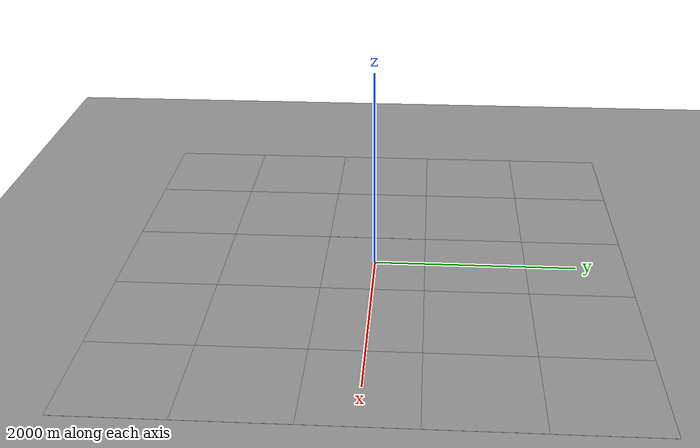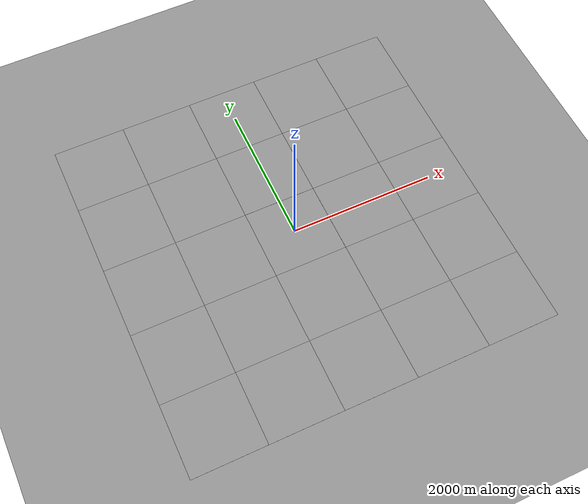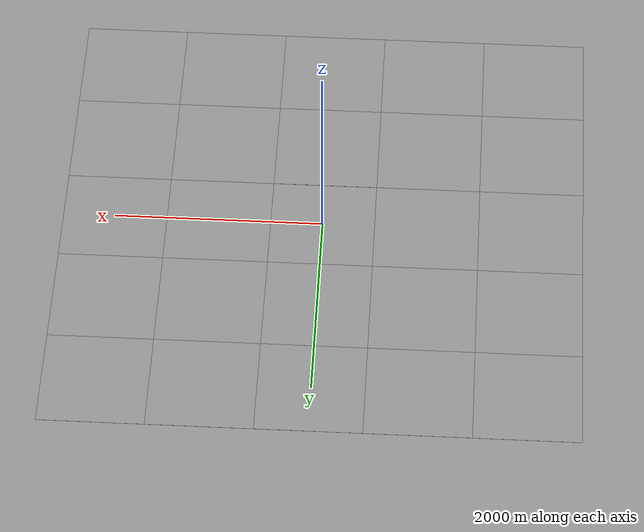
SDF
<sdf version="1.6">
 <world name="default">
  <scene>
   <grid>1</grid>
   <origin_visual>1</origin_visual>
   <ambient>0.592 0.624 0.635 1</ambient>
   <background>0.35 0.35 0.35 1</background>
   <shadows>1</shadows>
   <sky><clouds><speed>12</speed></clouds></sky>
  </scene>
  <physics name="default_physics" default="0" type="ode">
   <max_step_size>0.01</max_step_size>
   <real_time_factor>1</real_time_factor>
   <real_time_update_rate>100</real_time_update_rate>
  </physics>
  <spherical_coordinates>
   <surface_model>EARTH_WGS84</surface_model>
   <latitude_deg>0</latitude_deg>
   <longitude_deg>0</longitude_deg>
   <elevation>0</elevation>
   <heading_deg>0</heading_deg>
  </spherical_coordinates>
  <light name="sun" type="directional">
   <pose>0 0 1000 0 -0 0</pose>
   <diffuse>0.8 0.8 0.8 1</diffuse>
   <specular>0.5 0.5 0.5 1</specular>
   <attenuation>
    <range>1000</range>
    <constant>0.9</constant>
    <linear>0.01</linear>
    <quadratic>0.001</quadratic>
   </attenuation>
   <direction>-0.5 0.1 -0.4</direction>
  </light>
  <model name="ground_plane_0">
   <pose>0 0 -0.04 0 -0 0</pose>
   <static>1</static>
   <link name="link">
    <visual name="visual">
     <cast_shadows>0</cast_shadows>
     <geometry><plane><normal>0 0 1</normal><size>1000 1000</size></plane></geometry>
     <material>
      <script><uri>file://media/materials/scripts/gazebo.material</uri><name>Gazebo/Grey</name></script>
     </material>
    </visual>
    <collision name="collision">
     <geometry><plane><normal>0 0 1</normal><size>1000 1000</size></plane></geometry>
     <surface><friction><ode><mu>10000</mu><mu2>5000</mu2></ode></friction></surface>
    </collision>
   </link>
  </model>
  <model name="ground_plane_1">
   <pose>1000 -1000 -0.04 0 -0 0</pose>
   <static>1</static>
   <link name="link">
    <visual name="visual">
     <cast_shadows>0</cast_shadows>
     <geometry><plane><normal>0 0 1</normal><size>1000 1000</size></plane></geometry>
     <material>
      <script><uri>file://media/materials/scripts/gazebo.material</uri><name>Gazebo/Grey</name></script>
     </material>
    </visual>
    <collision name="collision">
     <geometry><plane><normal>0 0 1</normal><size>1000 1000</size></plane></geometry>
     <surface><friction><ode><mu>10000</mu><mu2>5000</mu2></ode></friction></surface>
    </collision>
   </link>
  </model>
  <model name="ground_plane_2">
   <pose>2000 -1000 -0.04 0 -0 0</pose>
   <static>1</static>
   <link name="link">
    <visual name="visual">
     <cast_shadows>0</cast_shadows>
     <geometry><plane><normal>0 0 1</normal><size>1000 1000</size></plane></geometry>
     <material>
      <script><uri>file://media/materials/scripts/gazebo.material</uri><name>Gazebo/Grey</name></script>
     </material>
    </visual>
    <collision name="collision">
     <geometry><plane><normal>0 0 1</normal><size>1000 1000</size></plane></geometry>
     <surface><friction><ode><mu>10000</mu><mu2>5000</mu2></ode></friction></surface>
    </collision>
   </link>
  </model>
  <model name="ground_plane_3">
   <pose>1000 -2000 -0.04 0 -0 0</pose>
   <static>1</static>
   <link name="link">
    <visual name="visual">
     <cast_shadows>0</cast_shadows>
     <geometry><plane><normal>0 0 1</normal><size>1000 1000</size></plane></geometry>
     <material>
      <script><uri>file://media/materials/scripts/gazebo.material</uri><name>Gazebo/Grey</name></script>
     </material>
    </visual>
    <collision name="collision">
     <geometry><plane><normal>0 0 1</normal><size>1000 1000</size></plane></geometry>
     <surface><friction><ode><mu>10000</mu><mu2>5000</mu2></ode></friction></surface>
    </collision>
   </link>
  </model>
  <model name="ground_plane_4">
   <pose>2000 -2000 -0.04 0 -0 0</pose>
   <static>1</static>
   <link name="link">
    <visual name="visual">
     <cast_shadows>0</cast_shadows>
     <geometry><plane><normal>0 0 1</normal><size>1000 1000</size></plane></geometry>
     <material>
      <script><uri>file://media/materials/scripts/gazebo.material</uri><name>Gazebo/Grey</name></script>
     </material>
    </visual>
    <collision name="collision">
     <geometry><plane><normal>0 0 1</normal><size>1000 1000</size></plane></geometry>
     <surface><friction><ode><mu>10000</mu><mu2>5000</mu2></ode></friction></surface>
    </collision>
   </link>
  </model>
  <model name="ground_plane_5">
   <pose>-1000 -1000 -0.04 0 -0 0</pose>
   <static>1</static>
   <link name="link">
    <visual name="visual">
     <cast_shadows>0</cast_shadows>
     <geometry><plane><normal>0 0 1</normal><size>1000 1000</size></plane></geometry>
     <material>
      <script><uri>file://media/materials/scripts/gazebo.material</uri><name>Gazebo/Grey</name></script>
     </material>
    </visual>
    <collision name="collision">
     <geometry><plane><normal>0 0 1</normal><size>1000 1000</size></plane></geometry>
     <surface><friction><ode><mu>10000</mu><mu2>5000</mu2></ode></friction></surface>
    </collision>
   </link>
  </model>
  <model name="ground_plane_6">
   <pose>-2000 -1000 -0.04 0 -0 0</pose>
   <static>1</static>
   <link name="link">
    <visual name="visual">
     <cast_shadows>0</cast_shadows>
     <geometry><plane><normal>0 0 1</normal><size>1000 1000</size></plane></geometry>
     <material>
      <script><uri>file://media/materials/scripts/gazebo.material</uri><name>Gazebo/Grey</name></script>
     </material>
    </visual>
    <collision name="collision">
     <geometry><plane><normal>0 0 1</normal><size>1000 1000</size></plane></geometry>
     <surface><friction><ode><mu>10000</mu><mu2>5000</mu2></ode></friction></surface>
    </collision>
   </link>
  </model>
  <model name="ground_plane_7">
   <pose>-1000 -2000 -0.04 0 -0 0</pose>
   <static>1</static>
   <link name="link">
    <visual name="visual">
     <cast_shadows>0</cast_shadows>
     <geometry><plane><normal>0 0 1</normal><size>1000 1000</size></plane></geometry>
     <material>
      <script><uri>file://media/materials/scripts/gazebo.material</uri><name>Gazebo/Grey</name></script>
     </material>
    </visual>
    <collision name="collision">
     <geometry><plane><normal>0 0 1</normal><size>1000 1000</size></plane></geometry>
     <surface><friction><ode><mu>10000</mu><mu2>5000</mu2></ode></friction></surface>
    </collision>
   </link>
  </model>
  <model name="ground_plane_8">
   <pose>-2000 -2000 -0.04 0 -0 0</pose>
   <static>1</static>
   <link name="link">
    <visual name="visual">
     <cast_shadows>0</cast_shadows>
     <geometry><plane><normal>0 0 1</normal><size>1000 1000</size></plane></geometry>
     <material>
      <script><uri>file://media/materials/scripts/gazebo.material</uri><name>Gazebo/Grey</name></script>
     </material>
    </visual>
    <collision name="collision">
     <geometry><plane><normal>0 0 1</normal><size>1000 1000</size></plane></geometry>
     <surface><friction><ode><mu>10000</mu><mu2>5000</mu2></ode></friction></surface>
    </collision>
   </link>
  </model>
  <model name="ground_plane_9">
   <pose>-1000 1000 -0.04 0 -0 0</pose>
   <static>1</static>
   <link name="link">
    <visual name="visual">
     <cast_shadows>0</cast_shadows>
     <geometry><plane><normal>0 0 1</normal><size>1000 1000</size></plane></geometry>
     <material>
      <script><uri>file://media/materials/scripts/gazebo.material</uri><name>Gazebo/Grey</name></script>
     </material>
    </visual>
    <collision name="collision">
     <geometry><plane><normal>0 0 1</normal><size>1000 1000</size></plane></geometry>
     <surface><friction><ode><mu>10000</mu><mu2>5000</mu2></ode></friction></surface>
    </collision>
   </link>
  </model>
  <model name="ground_plane_10">
   <pose>-2000 1000 -0.04 0 -0 0</pose>
   <static>1</static>
   <link name="link">
    <visual name="visual">
     <cast_shadows>0</cast_shadows>
     <geometry><plane><normal>0 0 1</normal><size>1000 1000</size></plane></geometry>
     <material>
      <script><uri>file://media/materials/scripts/gazebo.material</uri><name>Gazebo/Grey</name></script>
     </material>
    </visual>
    <collision name="collision">
     <geometry><plane><normal>0 0 1</normal><size>1000 1000</size></plane></geometry>
     <surface><friction><ode><mu>10000</mu><mu2>5000</mu2></ode></friction></surface>
    </collision>
   </link>
  </model>
  <model name="ground_plane_11">
   <pose>-1000 2000 -0.04 0 -0 0</pose>
   <static>1</static>
   <link name="link">
    <visual name="visual">
     <cast_shadows>0</cast_shadows>
     <geometry><plane><normal>0 0 1</normal><size>1000 1000</size></plane></geometry>
     <material>
      <script><uri>file://media/materials/scripts/gazebo.material</uri><name>Gazebo/Grey</name></script>
     </material>
    </visual>
    <collision name="collision">
     <geometry><plane><normal>0 0 1</normal><size>1000 1000</size></plane></geometry>
     <surface><friction><ode><mu>10000</mu><mu2>5000</mu2></ode></friction></surface>
    </collision>
   </link>
  </model>
  <model name="ground_plane_12">
   <pose>-2000 2000 -0.04 0 -0 0</pose>
   <static>1</static>
   <link name="link">
    <visual name="visual">
     <cast_shadows>0</cast_shadows>
     <geometry><plane><normal>0 0 1</normal><size>1000 1000</size></plane></geometry>
     <material>
      <script><uri>file://media/materials/scripts/gazebo.material</uri><name>Gazebo/Grey</name></script>
     </material>
    </visual>
    <collision name="collision">
     <geometry><plane><normal>0 0 1</normal><size>1000 1000</size></plane></geometry>
     <surface><friction><ode><mu>10000</mu><mu2>5000</mu2></ode></friction></surface>
    </collision>
   </link>
  </model>
  <model name="ground_plane_13">
   <pose>1000 1000 -0.04 0 -0 0</pose>
   <static>1</static>
   <link name="link">
    <visual name="visual">
     <cast_shadows>0</cast_shadows>
     <geometry><plane><normal>0 0 1</normal><size>1000 1000</size></plane></geometry>
     <material>
      <script><uri>file://media/materials/scripts/gazebo.material</uri><name>Gazebo/Grey</name></script>
     </material>
    </visual>
    <collision name="collision">
     <geometry><plane><normal>0 0 1</normal><size>1000 1000</size></plane></geometry>
     <surface><friction><ode><mu>10000</mu><mu2>5000</mu2></ode></friction></surface>
    </collision>
   </link>
  </model>
  <model name="ground_plane_14">
   <pose>2000 1000 -0.04 0 -0 0</pose>
   <static>1</static>
   <link name="link">
    <visual name="visual">
     <cast_shadows>0</cast_shadows>
     <geometry><plane><normal>0 0 1</normal><size>1000 1000</size></plane></geometry>
     <material>
      <script><uri>file://media/materials/scripts/gazebo.material</uri><name>Gazebo/Grey</name></script>
     </material>
    </visual>
    <collision name="collision">
     <geometry><plane><normal>0 0 1</normal><size>1000 1000</size></plane></geometry>
     <surface><friction><ode><mu>10000</mu><mu2>5000</mu2></ode></friction></surface>
    </collision>
   </link>
  </model>
  <model name="ground_plane_15">
   <pose>1000 2000 -0.04 0 -0 0</pose>
   <static>1</static>
   <link name="link">
    <visual name="visual">
     <cast_shadows>0</cast_shadows>
     <geometry><plane><normal>0 0 1</normal><size>1000 1000</size></plane></geometry>
     <material>
      <script><uri>file://media/materials/scripts/gazebo.material</uri><name>Gazebo/Grey</name></script>
     </material>
    </visual>
    <collision name="collision">
     <geometry><plane><normal>0 0 1</normal><size>1000 1000</size></plane></geometry>
     <surface><friction><ode><mu>10000</mu><mu2>5000</mu2></ode></friction></surface>
    </collision>
   </link>
  </model>
  <model name="ground_plane_16">
   <pose>2000 2000 -0.04 0 -0 0</pose>
   <static>1</static>
   <link name="link">
    <visual name="visual">
     <cast_shadows>0</cast_shadows>
     <geometry><plane><normal>0 0 1</normal><size>1000 1000</size></plane></geometry>
     <material>
      <script><uri>file://media/materials/scripts/gazebo.material</uri><name>Gazebo/Grey</name></script>
     </material>
    </visual>
    <collision name="collision">
     <geometry><plane><normal>0 0 1</normal><size>1000 1000</size></plane></geometry>
     <surface><friction><ode><mu>10000</mu><mu2>5000</mu2></ode></friction></surface>
    </collision>
   </link>
  </model>
  <model name="ground_plane_17">
   <pose>0 1000 -0.04 0 -0 0</pose>
   <static>1</static>
   <link name="link">
    <visual name="visual">
     <cast_shadows>0</cast_shadows>
     <geometry><plane><normal>0 0 1</normal><size>1000 1000</size></plane></geometry>
     <material>
      <script><uri>file://media/materials/scripts/gazebo.material</uri><name>Gazebo/Grey</name></script>
     </material>
    </visual>
    <collision name="collision">
     <geometry><plane><normal>0 0 1</normal><size>1000 1000</size></plane></geometry>
     <surface><friction><ode><mu>10000</mu><mu2>5000</mu2></ode></friction></surface>
    </collision>
   </link>
  </model>
  <model name="ground_plane_18">
   <pose>0 2000 -0.04 0 -0 0</pose>
   <static>1</static>
   <link name="link">
    <visual name="visual">
     <cast_shadows>0</cast_shadows>
     <geometry><plane><normal>0 0 1</normal><size>1000 1000</size></plane></geometry>
     <material>
      <script><uri>file://media/materials/scripts/gazebo.material</uri><name>Gazebo/Grey</name></script>
     </material>
    </visual>
    <collision name="collision">
     <geometry><plane><normal>0 0 1</normal><size>1000 1000</size></plane></geometry>
     <surface><friction><ode><mu>10000</mu><mu2>5000</mu2></ode></friction></surface>
    </collision>
   </link>
  </model>
  <model name="ground_plane_19">
   <pose>0 -1000 -0.04 0 -0 0</pose>
   <static>1</static>
   <link name="link">
    <visual name="visual">
     <cast_shadows>0</cast_shadows>
     <geometry><plane><normal>0 0 1</normal><size>1000 1000</size></plane></geometry>
     <material>
      <script><uri>file://media/materials/scripts/gazebo.material</uri><name>Gazebo/Grey</name></script>
     </material>
    </visual>
    <collision name="collision">
     <geometry><plane><normal>0 0 1</normal><size>1000 1000</size></plane></geometry>
     <surface><friction><ode><mu>10000</mu><mu2>5000</mu2></ode></friction></surface>
    </collision>
   </link>
  </model>
  <model name="ground_plane_20">
   <pose>0 -2000 -0.04 0 -0 0</pose>
   <static>1</static>
   <link name="link">
    <visual name="visual">
     <cast_shadows>0</cast_shadows>
     <geometry><plane><normal>0 0 1</normal><size>1000 1000</size></plane></geometry>
     <material>
      <script><uri>file://media/materials/scripts/gazebo.material</uri><name>Gazebo/Grey</name></script>
     </material>
    </visual>
    <collision name="collision">
     <geometry><plane><normal>0 0 1</normal><size>1000 1000</size></plane></geometry>
     <surface><friction><ode><mu>10000</mu><mu2>5000</mu2></ode></friction></surface>
    </collision>
   </link>
  </model>
  <model name="ground_plane_21">
   <pose>1000 0 -0.04 0 -0 0</pose>
   <static>1</static>
   <link name="link">
    <visual name="visual">
     <cast_shadows>0</cast_shadows>
     <geometry><plane><normal>0 0 1</normal><size>1000 1000</size></plane></geometry>
     <material>
      <script><uri>file://media/materials/scripts/gazebo.material</uri><name>Gazebo/Grey</name></script>
     </material>
    </visual>
    <collision name="collision">
     <geometry><plane><normal>0 0 1</normal><size>1000 1000</size></plane></geometry>
     <surface><friction><ode><mu>10000</mu><mu2>5000</mu2></ode></friction></surface>
    </collision>
   </link>
  </model>
  <model name="ground_plane_22">
   <pose>2000 0 -0.04 0 -0 0</pose>
   <static>1</static>
   <link name="link">
    <visual name="visual">
     <cast_shadows>0</cast_shadows>
     <geometry><plane><normal>0 0 1</normal><size>1000 1000</size></plane></geometry>
     <material>
      <script><uri>file://media/materials/scripts/gazebo.material</uri><name>Gazebo/Grey</name></script>
     </material>
    </visual>
    <collision name="collision">
     <geometry><plane><normal>0 0 1</normal><size>1000 1000</size></plane></geometry>
     <surface><friction><ode><mu>10000</mu><mu2>5000</mu2></ode></friction></surface>
    </collision>
   </link>
  </model>
  <model name="ground_plane_23">
   <pose>-1000 0 -0.04 0 -0 0</pose>
   <static>1</static>
   <link name="link">
    <visual name="visual">
     <cast_shadows>0</cast_shadows>
     <geometry><plane><normal>0 0 1</normal><size>1000 1000</size></plane></geometry>
     <material>
      <script><uri>file://media/materials/scripts/gazebo.material</uri><name>Gazebo/Grey</name></script>
     </material>
    </visual>
    <collision name="collision">
     <geometry><plane><normal>0 0 1</normal><size>1000 1000</size></plane></geometry>
     <surface><friction><ode><mu>10000</mu><mu2>5000</mu2></ode></friction></surface>
    </collision>
   </link>
  </model>
  <model name="ground_plane_24">
   <pose>-2000 0 -0.04 0 -0 0</pose>
   <static>1</static>
   <link name="link">
    <visual name="visual">
     <cast_shadows>0</cast_shadows>
     <geometry><plane><normal>0 0 1</normal><size>1000 1000</size></plane></geometry>
     <material>
      <script><uri>file://media/materials/scripts/gazebo.material</uri><name>Gazebo/Grey</name></script>
     </material>
    </visual>
    <collision name="collision">
     <geometry><plane><normal>0 0 1</normal><size>1000 1000</size></plane></geometry>
     <surface><friction><ode><mu>10000</mu><mu2>5000</mu2></ode></friction></surface>
    </collision>
   </link>
  </model>
  <gravity>0 0 -9.8</gravity>
  <magnetic_field>6e-06 2.3e-05 -4.2e-05</magnetic_field>
  <atmosphere type="adiabatic"/>
  <audio><device>default</device></audio>
 </world>
</sdf>
